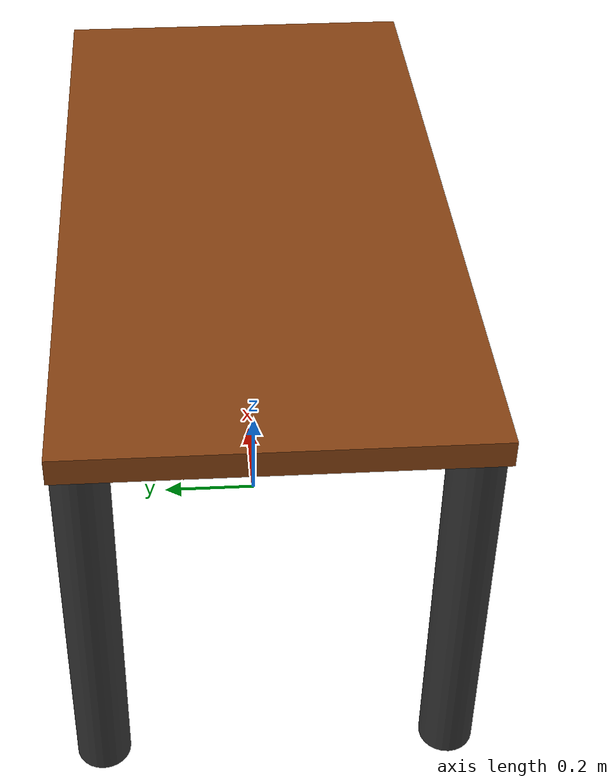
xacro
<?xml version="1.0"?>
<robot name="simple_table" xmlns:xacro="http://ros.org/wiki/xacro">
  <!-- Dimensiones fijas de la mesa -->
  <property name="table_length" value="1.5"/>  <!-- Largo fijo de la mesa: 1.5 metros -->
  <property name="table_width" value="0.75"/>  <!-- Ancho fijo de la mesa: 0.75 metros -->
  <property name="table_height" value="0.75"/> <!-- Altura fija de la mesa: 0.75 metros -->

  <!-- Definir el tablero de la mesa -->
  <link name="table_top">
    <visual>
      <origin xyz="0 0 ${table_height}" rpy="0 0 0"/>
      <geometry>
        <box size="${table_length} ${table_width} 0.05"/> <!-- Tablero con grosor fijo de 5 cm -->
      </geometry>
      <material name="brown">
        <color rgba="0.545 0.271 0.075 1.0"/> <!-- Color marrón para el tablero -->
      </material>
    </visual>
    <collision>
      <origin xyz="0 0 ${table_height}" rpy="0 0 0"/>
      <geometry>
        <box size="${table_length} ${table_width} 0.05"/>
      </geometry>
    </collision>
    <inertial>
      <origin xyz="0 0 ${table_height}" rpy="0 0 0"/>
      <mass value="20"/> <!-- Masa estimada del tablero -->
      <inertia ixx="10.0" ixy="0.0" ixz="0.0" iyy="10.0" iyz="0.0" izz="10.0"/>
    </inertial>
  </link>

  <!-- Definir las patas de la mesa -->
  <xacro:macro name="table_leg" params="leg_name x_offset y_offset">
    <link name="${leg_name}">
      <visual>
        <origin xyz="${x_offset} ${y_offset} ${table_height * 0.5}" rpy="0 0 0"/>
        <geometry>
          <cylinder radius="0.05" length="${table_height}"/> <!-- Patas de la mesa de 0.75 m -->
        </geometry>
        <material name="darkgray">
          <color rgba="0.2 0.2 0.2 1.0"/> <!-- Color gris oscuro para las patas -->
        </material>
      </visual>
      <collision>
        <origin xyz="${x_offset} ${y_offset} ${table_height * 0.5}" rpy="0 0 0"/>
        <geometry>
          <cylinder radius="0.05" length="${table_height}"/>
        </geometry>
      </collision>
      <inertial>
        <origin xyz="${x_offset} ${y_offset} ${table_height * 0.5}" rpy="0 0 0"/>
        <mass value="5"/> <!-- Masa de cada pata -->
        <inertia ixx="0.5" ixy="0.0" ixz="0.0" iyy="0.5" iyz="0.0" izz="0.5"/>
      </inertial>
    </link>
  </xacro:macro>

  <!-- Cuatro patas de la mesa con posiciones fijas -->
  <xacro:table_leg leg_name="table_leg_1" x_offset="${table_length * 0.5 - 0.05}" y_offset="${table_width * 0.5 - 0.05}"/>
  <xacro:table_leg leg_name="table_leg_2" x_offset="${table_length * 0.5 - 0.05}" y_offset="-${table_width * 0.5 - 0.05}"/>
  <xacro:table_leg leg_name="table_leg_3" x_offset="-${table_length * 0.5 - 0.05}" y_offset="${table_width * 0.5 - 0.05}"/>
  <xacro:table_leg leg_name="table_leg_4" x_offset="-${table_length * 0.5 - 0.05}" y_offset="-${table_width * 0.5 - 0.05}"/>

  <!-- Joints para conectar las patas al tablero -->
  <joint name="table_leg_1_joint" type="fixed">
    <parent link="table_top"/>
    <child link="table_leg_1"/>
    <origin xyz="0 0 0" rpy="0 0 0"/>
  </joint>
  <joint name="table_leg_2_joint" type="fixed">
    <parent link="table_top"/>
    <child link="table_leg_2"/>
    <origin xyz="0 0 0" rpy="0 0 0"/>
  </joint>
  <joint name="table_leg_3_joint" type="fixed">
    <parent link="table_top"/>
    <child link="table_leg_3"/>
    <origin xyz="0 0 0" rpy="0 0 0"/>
  </joint>
  <joint name="table_leg_4_joint" type="fixed">
    <parent link="table_top"/>
    <child link="table_leg_4"/>
    <origin xyz="0 0 0" rpy="0 0 0"/>
  </joint>
</robot>
